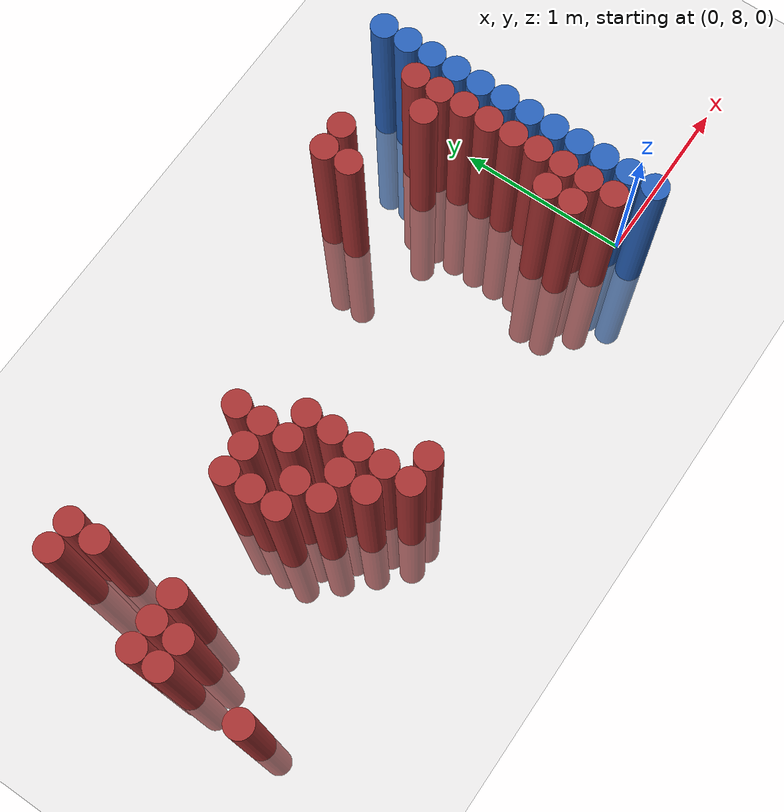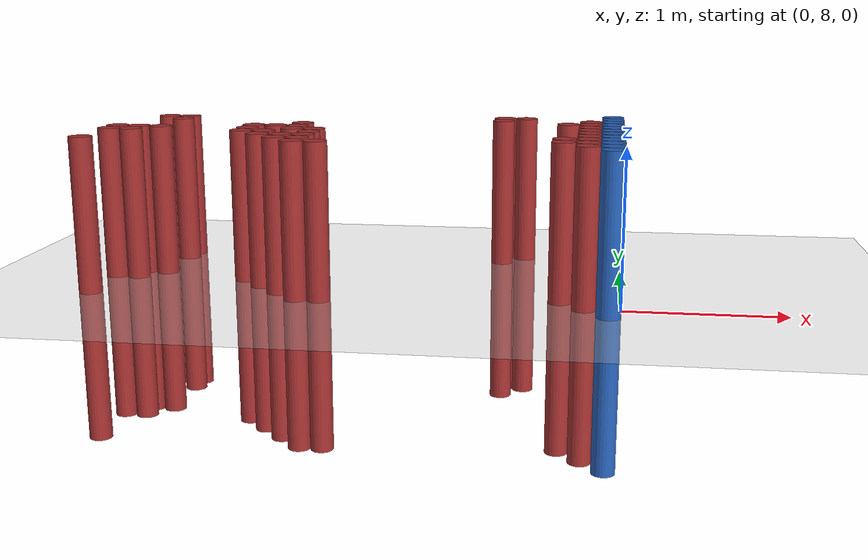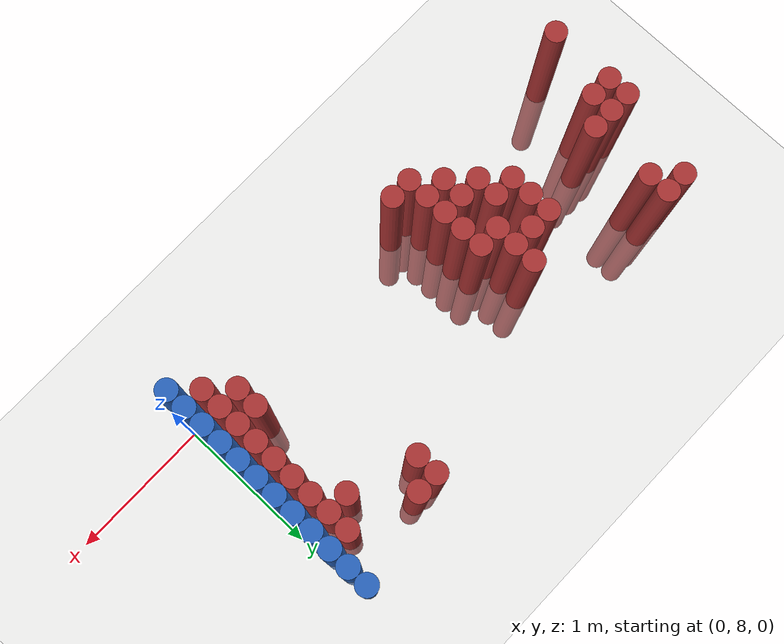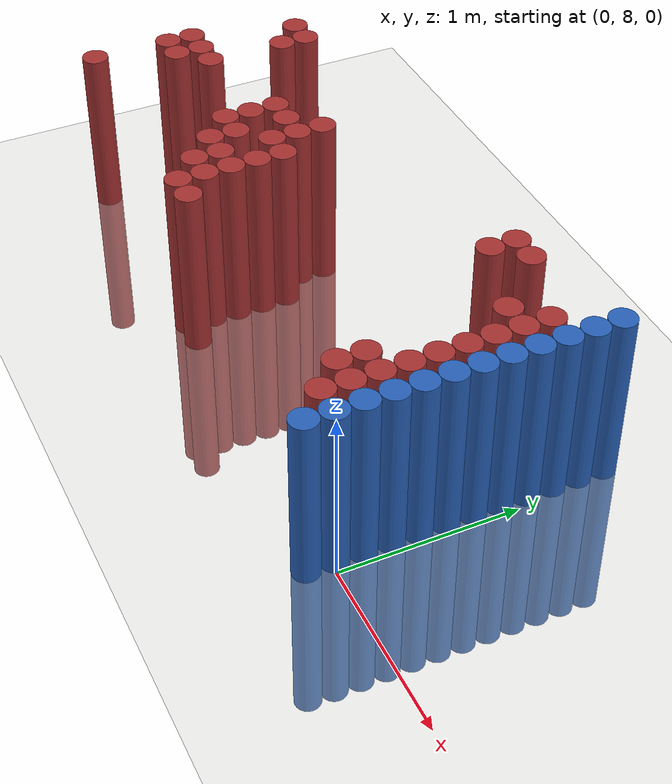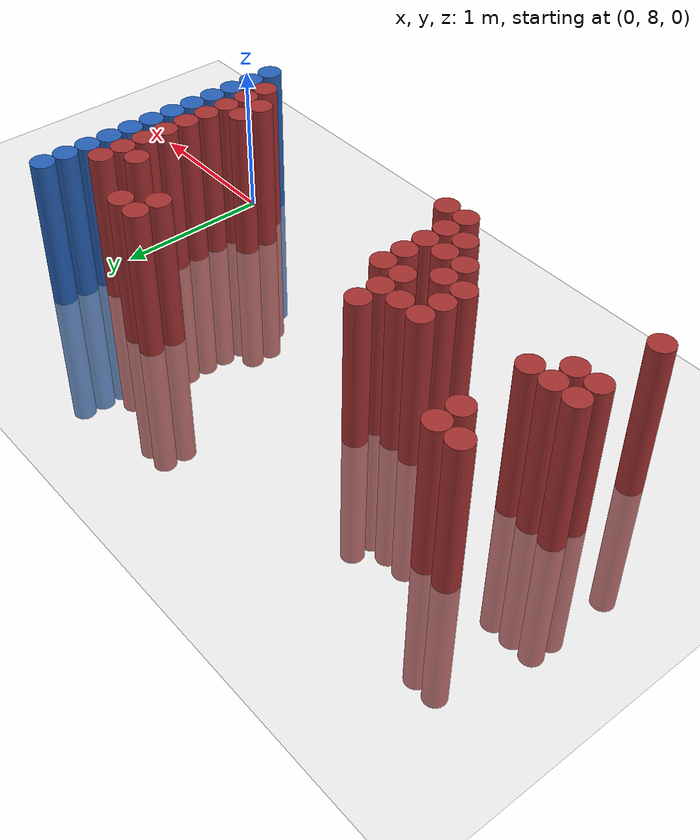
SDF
<sdf version="1.6">
 <world name="default">
  <model name="ground_plane">
   <static>1</static>
   <link name="link">
    <collision name="collision">
     <geometry><plane><normal>0 0 1</normal><size>100 100</size></plane></geometry>
     <surface><friction><ode><mu>100</mu><mu2>50</mu2></ode></friction></surface>
    </collision>
    <visual name="visual">
     <cast_shadows>0</cast_shadows>
     <geometry><plane><normal>0 0 1</normal><size>100 100</size></plane></geometry>
     <material>
      <script><uri>file://media/materials/scripts/gazebo.material</uri><name>Gazebo/Grey</name></script>
     </material>
    </visual>
   </link>
  </model>
  <model name="unit_cylinder_156">
   <static>1</static>
   <pose>-3.375000 8.025000 0.000000 0.000000 0.000000 0.000000</pose>
   <link name="link">
    <inertial>
     <mass>1</mass>
     <inertia><ixx>0.145833</ixx><ixy>0</ixy><ixz>0</ixz><iyy>0.145833</iyy><iyz>0</iyz><izz>0.125</izz></inertia>
    </inertial>
    <collision name="collision">
     <geometry><cylinder><radius>0.075000</radius><length>2</length></cylinder></geometry>
    </collision>
    <visual name="visual">
     <geometry><cylinder><radius>0.075000</radius><length>2</length></cylinder></geometry>
     <material>
      <ambient>0.648000 0.192000 0.192000 1</ambient>
      <diffuse>0.648000 0.192000 0.192000 1</diffuse>
     </material>
     <material>
      <script><name>Gazebo/Grey</name><uri>file://media/materials/scripts/gazebo.material</uri></script>
     </material>
    </visual>
   </link>
  </model>
  <model name="unit_cylinder_157">
   <static>1</static>
   <pose>-3.375000 8.475000 0.000000 0.000000 0.000000 0.000000</pose>
   <link name="link">
    <inertial>
     <mass>1</mass>
     <inertia><ixx>0.145833</ixx><ixy>0</ixy><ixz>0</ixz><iyy>0.145833</iyy><iyz>0</iyz><izz>0.125</izz></inertia>
    </inertial>
    <collision name="collision">
     <geometry><cylinder><radius>0.075000</radius><length>2</length></cylinder></geometry>
    </collision>
    <visual name="visual">
     <geometry><cylinder><radius>0.075000</radius><length>2</length></cylinder></geometry>
     <material>
      <ambient>0.648000 0.192000 0.192000 1</ambient>
      <diffuse>0.648000 0.192000 0.192000 1</diffuse>
     </material>
     <material>
      <script><name>Gazebo/Grey</name><uri>file://media/materials/scripts/gazebo.material</uri></script>
     </material>
    </visual>
   </link>
  </model>
  <model name="unit_cylinder_158">
   <static>1</static>
   <pose>-3.375000 8.625000 0.000000 0.000000 0.000000 0.000000</pose>
   <link name="link">
    <inertial>
     <mass>1</mass>
     <inertia><ixx>0.145833</ixx><ixy>0</ixy><ixz>0</ixz><iyy>0.145833</iyy><iyz>0</iyz><izz>0.125</izz></inertia>
    </inertial>
    <collision name="collision">
     <geometry><cylinder><radius>0.075000</radius><length>2</length></cylinder></geometry>
    </collision>
    <visual name="visual">
     <geometry><cylinder><radius>0.075000</radius><length>2</length></cylinder></geometry>
     <material>
      <ambient>0.648000 0.192000 0.192000 1</ambient>
      <diffuse>0.648000 0.192000 0.192000 1</diffuse>
     </material>
     <material>
      <script><name>Gazebo/Grey</name><uri>file://media/materials/scripts/gazebo.material</uri></script>
     </material>
    </visual>
   </link>
  </model>
  <model name="unit_cylinder_160">
   <static>1</static>
   <pose>-3.225000 8.475000 0.000000 0.000000 0.000000 0.000000</pose>
   <link name="link">
    <inertial>
     <mass>1</mass>
     <inertia><ixx>0.145833</ixx><ixy>0</ixy><ixz>0</ixz><iyy>0.145833</iyy><iyz>0</iyz><izz>0.125</izz></inertia>
    </inertial>
    <collision name="collision">
     <geometry><cylinder><radius>0.075000</radius><length>2</length></cylinder></geometry>
    </collision>
    <visual name="visual">
     <geometry><cylinder><radius>0.075000</radius><length>2</length></cylinder></geometry>
     <material>
      <ambient>0.648000 0.192000 0.192000 1</ambient>
      <diffuse>0.648000 0.192000 0.192000 1</diffuse>
     </material>
     <material>
      <script><name>Gazebo/Grey</name><uri>file://media/materials/scripts/gazebo.material</uri></script>
     </material>
    </visual>
   </link>
  </model>
  <model name="unit_cylinder_161">
   <static>1</static>
   <pose>-3.225000 8.625000 0.000000 0.000000 0.000000 0.000000</pose>
   <link name="link">
    <inertial>
     <mass>1</mass>
     <inertia><ixx>0.145833</ixx><ixy>0</ixy><ixz>0</ixz><iyy>0.145833</iyy><iyz>0</iyz><izz>0.125</izz></inertia>
    </inertial>
    <collision name="collision">
     <geometry><cylinder><radius>0.075000</radius><length>2</length></cylinder></geometry>
    </collision>
    <visual name="visual">
     <geometry><cylinder><radius>0.075000</radius><length>2</length></cylinder></geometry>
     <material>
      <ambient>0.648000 0.192000 0.192000 1</ambient>
      <diffuse>0.648000 0.192000 0.192000 1</diffuse>
     </material>
     <material>
      <script><name>Gazebo/Grey</name><uri>file://media/materials/scripts/gazebo.material</uri></script>
     </material>
    </visual>
   </link>
  </model>
  <model name="unit_cylinder_162">
   <static>1</static>
   <pose>-3.225000 9.225000 0.000000 0.000000 0.000000 0.000000</pose>
   <link name="link">
    <inertial>
     <mass>1</mass>
     <inertia><ixx>0.145833</ixx><ixy>0</ixy><ixz>0</ixz><iyy>0.145833</iyy><iyz>0</iyz><izz>0.125</izz></inertia>
    </inertial>
    <collision name="collision">
     <geometry><cylinder><radius>0.075000</radius><length>2</length></cylinder></geometry>
    </collision>
    <visual name="visual">
     <geometry><cylinder><radius>0.075000</radius><length>2</length></cylinder></geometry>
     <material>
      <ambient>0.648000 0.192000 0.192000 1</ambient>
      <diffuse>0.648000 0.192000 0.192000 1</diffuse>
     </material>
     <material>
      <script><name>Gazebo/Grey</name><uri>file://media/materials/scripts/gazebo.material</uri></script>
     </material>
    </visual>
   </link>
  </model>
  <model name="unit_cylinder_166">
   <static>1</static>
   <pose>-3.075000 8.625000 0.000000 0.000000 0.000000 0.000000</pose>
   <link name="link">
    <inertial>
     <mass>1</mass>
     <inertia><ixx>0.145833</ixx><ixy>0</ixy><ixz>0</ixz><iyy>0.145833</iyy><iyz>0</iyz><izz>0.125</izz></inertia>
    </inertial>
    <collision name="collision">
     <geometry><cylinder><radius>0.075000</radius><length>2</length></cylinder></geometry>
    </collision>
    <visual name="visual">
     <geometry><cylinder><radius>0.075000</radius><length>2</length></cylinder></geometry>
     <material>
      <ambient>0.648000 0.192000 0.192000 1</ambient>
      <diffuse>0.648000 0.192000 0.192000 1</diffuse>
     </material>
     <material>
      <script><name>Gazebo/Grey</name><uri>file://media/materials/scripts/gazebo.material</uri></script>
     </material>
    </visual>
   </link>
  </model>
  <model name="unit_cylinder_167">
   <static>1</static>
   <pose>-3.075000 9.075000 0.000000 0.000000 0.000000 0.000000</pose>
   <link name="link">
    <inertial>
     <mass>1</mass>
     <inertia><ixx>0.145833</ixx><ixy>0</ixy><ixz>0</ixz><iyy>0.145833</iyy><iyz>0</iyz><izz>0.125</izz></inertia>
    </inertial>
    <collision name="collision">
     <geometry><cylinder><radius>0.075000</radius><length>2</length></cylinder></geometry>
    </collision>
    <visual name="visual">
     <geometry><cylinder><radius>0.075000</radius><length>2</length></cylinder></geometry>
     <material>
      <ambient>0.648000 0.192000 0.192000 1</ambient>
      <diffuse>0.648000 0.192000 0.192000 1</diffuse>
     </material>
     <material>
      <script><name>Gazebo/Grey</name><uri>file://media/materials/scripts/gazebo.material</uri></script>
     </material>
    </visual>
   </link>
  </model>
  <model name="unit_cylinder_168">
   <static>1</static>
   <pose>-3.075000 9.225000 0.000000 0.000000 0.000000 0.000000</pose>
   <link name="link">
    <inertial>
     <mass>1</mass>
     <inertia><ixx>0.145833</ixx><ixy>0</ixy><ixz>0</ixz><iyy>0.145833</iyy><iyz>0</iyz><izz>0.125</izz></inertia>
    </inertial>
    <collision name="collision">
     <geometry><cylinder><radius>0.075000</radius><length>2</length></cylinder></geometry>
    </collision>
    <visual name="visual">
     <geometry><cylinder><radius>0.075000</radius><length>2</length></cylinder></geometry>
     <material>
      <ambient>0.648000 0.192000 0.192000 1</ambient>
      <diffuse>0.648000 0.192000 0.192000 1</diffuse>
     </material>
     <material>
      <script><name>Gazebo/Grey</name><uri>file://media/materials/scripts/gazebo.material</uri></script>
     </material>
    </visual>
   </link>
  </model>
  <model name="unit_cylinder_180">
   <static>1</static>
   <pose>-2.475000 8.475000 0.000000 0.000000 0.000000 0.000000</pose>
   <link name="link">
    <inertial>
     <mass>1</mass>
     <inertia><ixx>0.145833</ixx><ixy>0</ixy><ixz>0</ixz><iyy>0.145833</iyy><iyz>0</iyz><izz>0.125</izz></inertia>
    </inertial>
    <collision name="collision">
     <geometry><cylinder><radius>0.075000</radius><length>2</length></cylinder></geometry>
    </collision>
    <visual name="visual">
     <geometry><cylinder><radius>0.075000</radius><length>2</length></cylinder></geometry>
     <material>
      <ambient>0.648000 0.192000 0.192000 1</ambient>
      <diffuse>0.648000 0.192000 0.192000 1</diffuse>
     </material>
     <material>
      <script><name>Gazebo/Grey</name><uri>file://media/materials/scripts/gazebo.material</uri></script>
     </material>
    </visual>
   </link>
  </model>
  <model name="unit_cylinder_181">
   <static>1</static>
   <pose>-2.475000 8.625000 0.000000 0.000000 0.000000 0.000000</pose>
   <link name="link">
    <inertial>
     <mass>1</mass>
     <inertia><ixx>0.145833</ixx><ixy>0</ixy><ixz>0</ixz><iyy>0.145833</iyy><iyz>0</iyz><izz>0.125</izz></inertia>
    </inertial>
    <collision name="collision">
     <geometry><cylinder><radius>0.075000</radius><length>2</length></cylinder></geometry>
    </collision>
    <visual name="visual">
     <geometry><cylinder><radius>0.075000</radius><length>2</length></cylinder></geometry>
     <material>
      <ambient>0.648000 0.192000 0.192000 1</ambient>
      <diffuse>0.648000 0.192000 0.192000 1</diffuse>
     </material>
     <material>
      <script><name>Gazebo/Grey</name><uri>file://media/materials/scripts/gazebo.material</uri></script>
     </material>
    </visual>
   </link>
  </model>
  <model name="unit_cylinder_182">
   <static>1</static>
   <pose>-2.475000 8.775000 0.000000 0.000000 0.000000 0.000000</pose>
   <link name="link">
    <inertial>
     <mass>1</mass>
     <inertia><ixx>0.145833</ixx><ixy>0</ixy><ixz>0</ixz><iyy>0.145833</iyy><iyz>0</iyz><izz>0.125</izz></inertia>
    </inertial>
    <collision name="collision">
     <geometry><cylinder><radius>0.075000</radius><length>2</length></cylinder></geometry>
    </collision>
    <visual name="visual">
     <geometry><cylinder><radius>0.075000</radius><length>2</length></cylinder></geometry>
     <material>
      <ambient>0.648000 0.192000 0.192000 1</ambient>
      <diffuse>0.648000 0.192000 0.192000 1</diffuse>
     </material>
     <material>
      <script><name>Gazebo/Grey</name><uri>file://media/materials/scripts/gazebo.material</uri></script>
     </material>
    </visual>
   </link>
  </model>
  <model name="unit_cylinder_183">
   <static>1</static>
   <pose>-2.325000 8.325000 0.000000 0.000000 0.000000 0.000000</pose>
   <link name="link">
    <inertial>
     <mass>1</mass>
     <inertia><ixx>0.145833</ixx><ixy>0</ixy><ixz>0</ixz><iyy>0.145833</iyy><iyz>0</iyz><izz>0.125</izz></inertia>
    </inertial>
    <collision name="collision">
     <geometry><cylinder><radius>0.075000</radius><length>2</length></cylinder></geometry>
    </collision>
    <visual name="visual">
     <geometry><cylinder><radius>0.075000</radius><length>2</length></cylinder></geometry>
     <material>
      <ambient>0.648000 0.192000 0.192000 1</ambient>
      <diffuse>0.648000 0.192000 0.192000 1</diffuse>
     </material>
     <material>
      <script><name>Gazebo/Grey</name><uri>file://media/materials/scripts/gazebo.material</uri></script>
     </material>
    </visual>
   </link>
  </model>
  <model name="unit_cylinder_184">
   <static>1</static>
   <pose>-2.325000 8.475000 0.000000 0.000000 0.000000 0.000000</pose>
   <link name="link">
    <inertial>
     <mass>1</mass>
     <inertia><ixx>0.145833</ixx><ixy>0</ixy><ixz>0</ixz><iyy>0.145833</iyy><iyz>0</iyz><izz>0.125</izz></inertia>
    </inertial>
    <collision name="collision">
     <geometry><cylinder><radius>0.075000</radius><length>2</length></cylinder></geometry>
    </collision>
    <visual name="visual">
     <geometry><cylinder><radius>0.075000</radius><length>2</length></cylinder></geometry>
     <material>
      <ambient>0.648000 0.192000 0.192000 1</ambient>
      <diffuse>0.648000 0.192000 0.192000 1</diffuse>
     </material>
     <material>
      <script><name>Gazebo/Grey</name><uri>file://media/materials/scripts/gazebo.material</uri></script>
     </material>
    </visual>
   </link>
  </model>
  <model name="unit_cylinder_185">
   <static>1</static>
   <pose>-2.325000 8.775000 0.000000 0.000000 0.000000 0.000000</pose>
   <link name="link">
    <inertial>
     <mass>1</mass>
     <inertia><ixx>0.145833</ixx><ixy>0</ixy><ixz>0</ixz><iyy>0.145833</iyy><iyz>0</iyz><izz>0.125</izz></inertia>
    </inertial>
    <collision name="collision">
     <geometry><cylinder><radius>0.075000</radius><length>2</length></cylinder></geometry>
    </collision>
    <visual name="visual">
     <geometry><cylinder><radius>0.075000</radius><length>2</length></cylinder></geometry>
     <material>
      <ambient>0.648000 0.192000 0.192000 1</ambient>
      <diffuse>0.648000 0.192000 0.192000 1</diffuse>
     </material>
     <material>
      <script><name>Gazebo/Grey</name><uri>file://media/materials/scripts/gazebo.material</uri></script>
     </material>
    </visual>
   </link>
  </model>
  <model name="unit_cylinder_187">
   <static>1</static>
   <pose>-2.175000 8.175000 0.000000 0.000000 0.000000 0.000000</pose>
   <link name="link">
    <inertial>
     <mass>1</mass>
     <inertia><ixx>0.145833</ixx><ixy>0</ixy><ixz>0</ixz><iyy>0.145833</iyy><iyz>0</iyz><izz>0.125</izz></inertia>
    </inertial>
    <collision name="collision">
     <geometry><cylinder><radius>0.075000</radius><length>2</length></cylinder></geometry>
    </collision>
    <visual name="visual">
     <geometry><cylinder><radius>0.075000</radius><length>2</length></cylinder></geometry>
     <material>
      <ambient>0.648000 0.192000 0.192000 1</ambient>
      <diffuse>0.648000 0.192000 0.192000 1</diffuse>
     </material>
     <material>
      <script><name>Gazebo/Grey</name><uri>file://media/materials/scripts/gazebo.material</uri></script>
     </material>
    </visual>
   </link>
  </model>
  <model name="unit_cylinder_188">
   <static>1</static>
   <pose>-2.175000 8.325000 0.000000 0.000000 0.000000 0.000000</pose>
   <link name="link">
    <inertial>
     <mass>1</mass>
     <inertia><ixx>0.145833</ixx><ixy>0</ixy><ixz>0</ixz><iyy>0.145833</iyy><iyz>0</iyz><izz>0.125</izz></inertia>
    </inertial>
    <collision name="collision">
     <geometry><cylinder><radius>0.075000</radius><length>2</length></cylinder></geometry>
    </collision>
    <visual name="visual">
     <geometry><cylinder><radius>0.075000</radius><length>2</length></cylinder></geometry>
     <material>
      <ambient>0.648000 0.192000 0.192000 1</ambient>
      <diffuse>0.648000 0.192000 0.192000 1</diffuse>
     </material>
     <material>
      <script><name>Gazebo/Grey</name><uri>file://media/materials/scripts/gazebo.material</uri></script>
     </material>
    </visual>
   </link>
  </model>
  <model name="unit_cylinder_189">
   <static>1</static>
   <pose>-2.175000 8.625000 0.000000 0.000000 0.000000 0.000000</pose>
   <link name="link">
    <inertial>
     <mass>1</mass>
     <inertia><ixx>0.145833</ixx><ixy>0</ixy><ixz>0</ixz><iyy>0.145833</iyy><iyz>0</iyz><izz>0.125</izz></inertia>
    </inertial>
    <collision name="collision">
     <geometry><cylinder><radius>0.075000</radius><length>2</length></cylinder></geometry>
    </collision>
    <visual name="visual">
     <geometry><cylinder><radius>0.075000</radius><length>2</length></cylinder></geometry>
     <material>
      <ambient>0.648000 0.192000 0.192000 1</ambient>
      <diffuse>0.648000 0.192000 0.192000 1</diffuse>
     </material>
     <material>
      <script><name>Gazebo/Grey</name><uri>file://media/materials/scripts/gazebo.material</uri></script>
     </material>
    </visual>
   </link>
  </model>
  <model name="unit_cylinder_190">
   <static>1</static>
   <pose>-2.175000 8.775000 0.000000 0.000000 0.000000 0.000000</pose>
   <link name="link">
    <inertial>
     <mass>1</mass>
     <inertia><ixx>0.145833</ixx><ixy>0</ixy><ixz>0</ixz><iyy>0.145833</iyy><iyz>0</iyz><izz>0.125</izz></inertia>
    </inertial>
    <collision name="collision">
     <geometry><cylinder><radius>0.075000</radius><length>2</length></cylinder></geometry>
    </collision>
    <visual name="visual">
     <geometry><cylinder><radius>0.075000</radius><length>2</length></cylinder></geometry>
     <material>
      <ambient>0.648000 0.192000 0.192000 1</ambient>
      <diffuse>0.648000 0.192000 0.192000 1</diffuse>
     </material>
     <material>
      <script><name>Gazebo/Grey</name><uri>file://media/materials/scripts/gazebo.material</uri></script>
     </material>
    </visual>
   </link>
  </model>
  <model name="unit_cylinder_191">
   <static>1</static>
   <pose>-2.175000 8.925000 0.000000 0.000000 0.000000 0.000000</pose>
   <link name="link">
    <inertial>
     <mass>1</mass>
     <inertia><ixx>0.145833</ixx><ixy>0</ixy><ixz>0</ixz><iyy>0.145833</iyy><iyz>0</iyz><izz>0.125</izz></inertia>
    </inertial>
    <collision name="collision">
     <geometry><cylinder><radius>0.075000</radius><length>2</length></cylinder></geometry>
    </collision>
    <visual name="visual">
     <geometry><cylinder><radius>0.075000</radius><length>2</length></cylinder></geometry>
     <material>
      <ambient>0.648000 0.192000 0.192000 1</ambient>
      <diffuse>0.648000 0.192000 0.192000 1</diffuse>
     </material>
     <material>
      <script><name>Gazebo/Grey</name><uri>file://media/materials/scripts/gazebo.material</uri></script>
     </material>
    </visual>
   </link>
  </model>
  <model name="unit_cylinder_196">
   <static>1</static>
   <pose>-2.025000 8.025000 0.000000 0.000000 0.000000 0.000000</pose>
   <link name="link">
    <inertial>
     <mass>1</mass>
     <inertia><ixx>0.145833</ixx><ixy>0</ixy><ixz>0</ixz><iyy>0.145833</iyy><iyz>0</iyz><izz>0.125</izz></inertia>
    </inertial>
    <collision name="collision">
     <geometry><cylinder><radius>0.075000</radius><length>2</length></cylinder></geometry>
    </collision>
    <visual name="visual">
     <geometry><cylinder><radius>0.075000</radius><length>2</length></cylinder></geometry>
     <material>
      <ambient>0.648000 0.192000 0.192000 1</ambient>
      <diffuse>0.648000 0.192000 0.192000 1</diffuse>
     </material>
     <material>
      <script><name>Gazebo/Grey</name><uri>file://media/materials/scripts/gazebo.material</uri></script>
     </material>
    </visual>
   </link>
  </model>
  <model name="unit_cylinder_197">
   <static>1</static>
   <pose>-2.025000 8.175000 0.000000 0.000000 0.000000 0.000000</pose>
   <link name="link">
    <inertial>
     <mass>1</mass>
     <inertia><ixx>0.145833</ixx><ixy>0</ixy><ixz>0</ixz><iyy>0.145833</iyy><iyz>0</iyz><izz>0.125</izz></inertia>
    </inertial>
    <collision name="collision">
     <geometry><cylinder><radius>0.075000</radius><length>2</length></cylinder></geometry>
    </collision>
    <visual name="visual">
     <geometry><cylinder><radius>0.075000</radius><length>2</length></cylinder></geometry>
     <material>
      <ambient>0.648000 0.192000 0.192000 1</ambient>
      <diffuse>0.648000 0.192000 0.192000 1</diffuse>
     </material>
     <material>
      <script><name>Gazebo/Grey</name><uri>file://media/materials/scripts/gazebo.material</uri></script>
     </material>
    </visual>
   </link>
  </model>
  <model name="unit_cylinder_198">
   <static>1</static>
   <pose>-2.025000 8.325000 0.000000 0.000000 0.000000 0.000000</pose>
   <link name="link">
    <inertial>
     <mass>1</mass>
     <inertia><ixx>0.145833</ixx><ixy>0</ixy><ixz>0</ixz><iyy>0.145833</iyy><iyz>0</iyz><izz>0.125</izz></inertia>
    </inertial>
    <collision name="collision">
     <geometry><cylinder><radius>0.075000</radius><length>2</length></cylinder></geometry>
    </collision>
    <visual name="visual">
     <geometry><cylinder><radius>0.075000</radius><length>2</length></cylinder></geometry>
     <material>
      <ambient>0.648000 0.192000 0.192000 1</ambient>
      <diffuse>0.648000 0.192000 0.192000 1</diffuse>
     </material>
     <material>
      <script><name>Gazebo/Grey</name><uri>file://media/materials/scripts/gazebo.material</uri></script>
     </material>
    </visual>
   </link>
  </model>
  <model name="unit_cylinder_199">
   <static>1</static>
   <pose>-2.025000 8.475000 0.000000 0.000000 0.000000 0.000000</pose>
   <link name="link">
    <inertial>
     <mass>1</mass>
     <inertia><ixx>0.145833</ixx><ixy>0</ixy><ixz>0</ixz><iyy>0.145833</iyy><iyz>0</iyz><izz>0.125</izz></inertia>
    </inertial>
    <collision name="collision">
     <geometry><cylinder><radius>0.075000</radius><length>2</length></cylinder></geometry>
    </collision>
    <visual name="visual">
     <geometry><cylinder><radius>0.075000</radius><length>2</length></cylinder></geometry>
     <material>
      <ambient>0.648000 0.192000 0.192000 1</ambient>
      <diffuse>0.648000 0.192000 0.192000 1</diffuse>
     </material>
     <material>
      <script><name>Gazebo/Grey</name><uri>file://media/materials/scripts/gazebo.material</uri></script>
     </material>
    </visual>
   </link>
  </model>
  <model name="unit_cylinder_200">
   <static>1</static>
   <pose>-2.025000 8.625000 0.000000 0.000000 0.000000 0.000000</pose>
   <link name="link">
    <inertial>
     <mass>1</mass>
     <inertia><ixx>0.145833</ixx><ixy>0</ixy><ixz>0</ixz><iyy>0.145833</iyy><iyz>0</iyz><izz>0.125</izz></inertia>
    </inertial>
    <collision name="collision">
     <geometry><cylinder><radius>0.075000</radius><length>2</length></cylinder></geometry>
    </collision>
    <visual name="visual">
     <geometry><cylinder><radius>0.075000</radius><length>2</length></cylinder></geometry>
     <material>
      <ambient>0.648000 0.192000 0.192000 1</ambient>
      <diffuse>0.648000 0.192000 0.192000 1</diffuse>
     </material>
     <material>
      <script><name>Gazebo/Grey</name><uri>file://media/materials/scripts/gazebo.material</uri></script>
     </material>
    </visual>
   </link>
  </model>
  <model name="unit_cylinder_202">
   <static>1</static>
   <pose>-1.875000 8.025000 0.000000 0.000000 0.000000 0.000000</pose>
   <link name="link">
    <inertial>
     <mass>1</mass>
     <inertia><ixx>0.145833</ixx><ixy>0</ixy><ixz>0</ixz><iyy>0.145833</iyy><iyz>0</iyz><izz>0.125</izz></inertia>
    </inertial>
    <collision name="collision">
     <geometry><cylinder><radius>0.075000</radius><length>2</length></cylinder></geometry>
    </collision>
    <visual name="visual">
     <geometry><cylinder><radius>0.075000</radius><length>2</length></cylinder></geometry>
     <material>
      <ambient>0.648000 0.192000 0.192000 1</ambient>
      <diffuse>0.648000 0.192000 0.192000 1</diffuse>
     </material>
     <material>
      <script><name>Gazebo/Grey</name><uri>file://media/materials/scripts/gazebo.material</uri></script>
     </material>
    </visual>
   </link>
  </model>
  <model name="unit_cylinder_206">
   <static>1</static>
   <pose>-0.825000 9.225000 0.000000 0.000000 0.000000 0.000000</pose>
   <link name="link">
    <inertial>
     <mass>1</mass>
     <inertia><ixx>0.145833</ixx><ixy>0</ixy><ixz>0</ixz><iyy>0.145833</iyy><iyz>0</iyz><izz>0.125</izz></inertia>
    </inertial>
    <collision name="collision">
     <geometry><cylinder><radius>0.075000</radius><length>2</length></cylinder></geometry>
    </collision>
    <visual name="visual">
     <geometry><cylinder><radius>0.075000</radius><length>2</length></cylinder></geometry>
     <material>
      <ambient>0.648000 0.192000 0.192000 1</ambient>
      <diffuse>0.648000 0.192000 0.192000 1</diffuse>
     </material>
     <material>
      <script><name>Gazebo/Grey</name><uri>file://media/materials/scripts/gazebo.material</uri></script>
     </material>
    </visual>
   </link>
  </model>
  <model name="unit_cylinder_207">
   <static>1</static>
   <pose>-0.825000 9.375000 0.000000 0.000000 0.000000 0.000000</pose>
   <link name="link">
    <inertial>
     <mass>1</mass>
     <inertia><ixx>0.145833</ixx><ixy>0</ixy><ixz>0</ixz><iyy>0.145833</iyy><iyz>0</iyz><izz>0.125</izz></inertia>
    </inertial>
    <collision name="collision">
     <geometry><cylinder><radius>0.075000</radius><length>2</length></cylinder></geometry>
    </collision>
    <visual name="visual">
     <geometry><cylinder><radius>0.075000</radius><length>2</length></cylinder></geometry>
     <material>
      <ambient>0.648000 0.192000 0.192000 1</ambient>
      <diffuse>0.648000 0.192000 0.192000 1</diffuse>
     </material>
     <material>
      <script><name>Gazebo/Grey</name><uri>file://media/materials/scripts/gazebo.material</uri></script>
     </material>
    </visual>
   </link>
  </model>
  <model name="unit_cylinder_210">
   <static>1</static>
   <pose>-0.675000 9.375000 0.000000 0.000000 0.000000 0.000000</pose>
   <link name="link">
    <inertial>
     <mass>1</mass>
     <inertia><ixx>0.145833</ixx><ixy>0</ixy><ixz>0</ixz><iyy>0.145833</iyy><iyz>0</iyz><izz>0.125</izz></inertia>
    </inertial>
    <collision name="collision">
     <geometry><cylinder><radius>0.075000</radius><length>2</length></cylinder></geometry>
    </collision>
    <visual name="visual">
     <geometry><cylinder><radius>0.075000</radius><length>2</length></cylinder></geometry>
     <material>
      <ambient>0.648000 0.192000 0.192000 1</ambient>
      <diffuse>0.648000 0.192000 0.192000 1</diffuse>
     </material>
     <material>
      <script><name>Gazebo/Grey</name><uri>file://media/materials/scripts/gazebo.material</uri></script>
     </material>
    </visual>
   </link>
  </model>
  <model name="unit_cylinder_215">
   <static>1</static>
   <pose>-0.375000 8.175000 0.000000 0.000000 0.000000 0.000000</pose>
   <link name="link">
    <inertial>
     <mass>1</mass>
     <inertia><ixx>0.145833</ixx><ixy>0</ixy><ixz>0</ixz><iyy>0.145833</iyy><iyz>0</iyz><izz>0.125</izz></inertia>
    </inertial>
    <collision name="collision">
     <geometry><cylinder><radius>0.075000</radius><length>2</length></cylinder></geometry>
    </collision>
    <visual name="visual">
     <geometry><cylinder><radius>0.075000</radius><length>2</length></cylinder></geometry>
     <material>
      <ambient>0.648000 0.192000 0.192000 1</ambient>
      <diffuse>0.648000 0.192000 0.192000 1</diffuse>
     </material>
     <material>
      <script><name>Gazebo/Grey</name><uri>file://media/materials/scripts/gazebo.material</uri></script>
     </material>
    </visual>
   </link>
  </model>
  <model name="unit_cylinder_216">
   <static>1</static>
   <pose>-0.375000 8.325000 0.000000 0.000000 0.000000 0.000000</pose>
   <link name="link">
    <inertial>
     <mass>1</mass>
     <inertia><ixx>0.145833</ixx><ixy>0</ixy><ixz>0</ixz><iyy>0.145833</iyy><iyz>0</iyz><izz>0.125</izz></inertia>
    </inertial>
    <collision name="collision">
     <geometry><cylinder><radius>0.075000</radius><length>2</length></cylinder></geometry>
    </collision>
    <visual name="visual">
     <geometry><cylinder><radius>0.075000</radius><length>2</length></cylinder></geometry>
     <material>
      <ambient>0.648000 0.192000 0.192000 1</ambient>
      <diffuse>0.648000 0.192000 0.192000 1</diffuse>
     </material>
     <material>
      <script><name>Gazebo/Grey</name><uri>file://media/materials/scripts/gazebo.material</uri></script>
     </material>
    </visual>
   </link>
  </model>
  <model name="unit_cylinder_217">
   <static>1</static>
   <pose>-0.375000 9.075000 0.000000 0.000000 0.000000 0.000000</pose>
   <link name="link">
    <inertial>
     <mass>1</mass>
     <inertia><ixx>0.145833</ixx><ixy>0</ixy><ixz>0</ixz><iyy>0.145833</iyy><iyz>0</iyz><izz>0.125</izz></inertia>
    </inertial>
    <collision name="collision">
     <geometry><cylinder><radius>0.075000</radius><length>2</length></cylinder></geometry>
    </collision>
    <visual name="visual">
     <geometry><cylinder><radius>0.075000</radius><length>2</length></cylinder></geometry>
     <material>
      <ambient>0.648000 0.192000 0.192000 1</ambient>
      <diffuse>0.648000 0.192000 0.192000 1</diffuse>
     </material>
     <material>
      <script><name>Gazebo/Grey</name><uri>file://media/materials/scripts/gazebo.material</uri></script>
     </material>
    </visual>
   </link>
  </model>
  <model name="unit_cylinder_225">
   <static>1</static>
   <pose>-0.225000 8.025000 0.000000 0.000000 0.000000 0.000000</pose>
   <link name="link">
    <inertial>
     <mass>1</mass>
     <inertia><ixx>0.145833</ixx><ixy>0</ixy><ixz>0</ixz><iyy>0.145833</iyy><iyz>0</iyz><izz>0.125</izz></inertia>
    </inertial>
    <collision name="collision">
     <geometry><cylinder><radius>0.075000</radius><length>2</length></cylinder></geometry>
    </collision>
    <visual name="visual">
     <geometry><cylinder><radius>0.075000</radius><length>2</length></cylinder></geometry>
     <material>
      <ambient>0.648000 0.192000 0.192000 1</ambient>
      <diffuse>0.648000 0.192000 0.192000 1</diffuse>
     </material>
     <material>
      <script><name>Gazebo/Grey</name><uri>file://media/materials/scripts/gazebo.material</uri></script>
     </material>
    </visual>
   </link>
  </model>
  <model name="unit_cylinder_226">
   <static>1</static>
   <pose>-0.225000 8.175000 0.000000 0.000000 0.000000 0.000000</pose>
   <link name="link">
    <inertial>
     <mass>1</mass>
     <inertia><ixx>0.145833</ixx><ixy>0</ixy><ixz>0</ixz><iyy>0.145833</iyy><iyz>0</iyz><izz>0.125</izz></inertia>
    </inertial>
    <collision name="collision">
     <geometry><cylinder><radius>0.075000</radius><length>2</length></cylinder></geometry>
    </collision>
    <visual name="visual">
     <geometry><cylinder><radius>0.075000</radius><length>2</length></cylinder></geometry>
     <material>
      <ambient>0.648000 0.192000 0.192000 1</ambient>
      <diffuse>0.648000 0.192000 0.192000 1</diffuse>
     </material>
     <material>
      <script><name>Gazebo/Grey</name><uri>file://media/materials/scripts/gazebo.material</uri></script>
     </material>
    </visual>
   </link>
  </model>
  <model name="unit_cylinder_227">
   <static>1</static>
   <pose>-0.225000 8.325000 0.000000 0.000000 0.000000 0.000000</pose>
   <link name="link">
    <inertial>
     <mass>1</mass>
     <inertia><ixx>0.145833</ixx><ixy>0</ixy><ixz>0</ixz><iyy>0.145833</iyy><iyz>0</iyz><izz>0.125</izz></inertia>
    </inertial>
    <collision name="collision">
     <geometry><cylinder><radius>0.075000</radius><length>2</length></cylinder></geometry>
    </collision>
    <visual name="visual">
     <geometry><cylinder><radius>0.075000</radius><length>2</length></cylinder></geometry>
     <material>
      <ambient>0.648000 0.192000 0.192000 1</ambient>
      <diffuse>0.648000 0.192000 0.192000 1</diffuse>
     </material>
     <material>
      <script><name>Gazebo/Grey</name><uri>file://media/materials/scripts/gazebo.material</uri></script>
     </material>
    </visual>
   </link>
  </model>
  <model name="unit_cylinder_228">
   <static>1</static>
   <pose>-0.225000 8.475000 0.000000 0.000000 0.000000 0.000000</pose>
   <link name="link">
    <inertial>
     <mass>1</mass>
     <inertia><ixx>0.145833</ixx><ixy>0</ixy><ixz>0</ixz><iyy>0.145833</iyy><iyz>0</iyz><izz>0.125</izz></inertia>
    </inertial>
    <collision name="collision">
     <geometry><cylinder><radius>0.075000</radius><length>2</length></cylinder></geometry>
    </collision>
    <visual name="visual">
     <geometry><cylinder><radius>0.075000</radius><length>2</length></cylinder></geometry>
     <material>
      <ambient>0.648000 0.192000 0.192000 1</ambient>
      <diffuse>0.648000 0.192000 0.192000 1</diffuse>
     </material>
     <material>
      <script><name>Gazebo/Grey</name><uri>file://media/materials/scripts/gazebo.material</uri></script>
     </material>
    </visual>
   </link>
  </model>
  <model name="unit_cylinder_229">
   <static>1</static>
   <pose>-0.225000 8.625000 0.000000 0.000000 0.000000 0.000000</pose>
   <link name="link">
    <inertial>
     <mass>1</mass>
     <inertia><ixx>0.145833</ixx><ixy>0</ixy><ixz>0</ixz><iyy>0.145833</iyy><iyz>0</iyz><izz>0.125</izz></inertia>
    </inertial>
    <collision name="collision">
     <geometry><cylinder><radius>0.075000</radius><length>2</length></cylinder></geometry>
    </collision>
    <visual name="visual">
     <geometry><cylinder><radius>0.075000</radius><length>2</length></cylinder></geometry>
     <material>
      <ambient>0.648000 0.192000 0.192000 1</ambient>
      <diffuse>0.648000 0.192000 0.192000 1</diffuse>
     </material>
     <material>
      <script><name>Gazebo/Grey</name><uri>file://media/materials/scripts/gazebo.material</uri></script>
     </material>
    </visual>
   </link>
  </model>
  <model name="unit_cylinder_230">
   <static>1</static>
   <pose>-0.225000 8.775000 0.000000 0.000000 0.000000 0.000000</pose>
   <link name="link">
    <inertial>
     <mass>1</mass>
     <inertia><ixx>0.145833</ixx><ixy>0</ixy><ixz>0</ixz><iyy>0.145833</iyy><iyz>0</iyz><izz>0.125</izz></inertia>
    </inertial>
    <collision name="collision">
     <geometry><cylinder><radius>0.075000</radius><length>2</length></cylinder></geometry>
    </collision>
    <visual name="visual">
     <geometry><cylinder><radius>0.075000</radius><length>2</length></cylinder></geometry>
     <material>
      <ambient>0.648000 0.192000 0.192000 1</ambient>
      <diffuse>0.648000 0.192000 0.192000 1</diffuse>
     </material>
     <material>
      <script><name>Gazebo/Grey</name><uri>file://media/materials/scripts/gazebo.material</uri></script>
     </material>
    </visual>
   </link>
  </model>
  <model name="unit_cylinder_231">
   <static>1</static>
   <pose>-0.225000 8.925000 0.000000 0.000000 0.000000 0.000000</pose>
   <link name="link">
    <inertial>
     <mass>1</mass>
     <inertia><ixx>0.145833</ixx><ixy>0</ixy><ixz>0</ixz><iyy>0.145833</iyy><iyz>0</iyz><izz>0.125</izz></inertia>
    </inertial>
    <collision name="collision">
     <geometry><cylinder><radius>0.075000</radius><length>2</length></cylinder></geometry>
    </collision>
    <visual name="visual">
     <geometry><cylinder><radius>0.075000</radius><length>2</length></cylinder></geometry>
     <material>
      <ambient>0.648000 0.192000 0.192000 1</ambient>
      <diffuse>0.648000 0.192000 0.192000 1</diffuse>
     </material>
     <material>
      <script><name>Gazebo/Grey</name><uri>file://media/materials/scripts/gazebo.material</uri></script>
     </material>
    </visual>
   </link>
  </model>
  <model name="unit_cylinder_232">
   <static>1</static>
   <pose>-0.225000 9.075000 0.000000 0.000000 0.000000 0.000000</pose>
   <link name="link">
    <inertial>
     <mass>1</mass>
     <inertia><ixx>0.145833</ixx><ixy>0</ixy><ixz>0</ixz><iyy>0.145833</iyy><iyz>0</iyz><izz>0.125</izz></inertia>
    </inertial>
    <collision name="collision">
     <geometry><cylinder><radius>0.075000</radius><length>2</length></cylinder></geometry>
    </collision>
    <visual name="visual">
     <geometry><cylinder><radius>0.075000</radius><length>2</length></cylinder></geometry>
     <material>
      <ambient>0.648000 0.192000 0.192000 1</ambient>
      <diffuse>0.648000 0.192000 0.192000 1</diffuse>
     </material>
     <material>
      <script><name>Gazebo/Grey</name><uri>file://media/materials/scripts/gazebo.material</uri></script>
     </material>
    </visual>
   </link>
  </model>
  <model name="unit_cylinder_233">
   <static>1</static>
   <pose>-0.225000 9.225000 0.000000 0.000000 0.000000 0.000000</pose>
   <link name="link">
    <inertial>
     <mass>1</mass>
     <inertia><ixx>0.145833</ixx><ixy>0</ixy><ixz>0</ixz><iyy>0.145833</iyy><iyz>0</iyz><izz>0.125</izz></inertia>
    </inertial>
    <collision name="collision">
     <geometry><cylinder><radius>0.075000</radius><length>2</length></cylinder></geometry>
    </collision>
    <visual name="visual">
     <geometry><cylinder><radius>0.075000</radius><length>2</length></cylinder></geometry>
     <material>
      <ambient>0.648000 0.192000 0.192000 1</ambient>
      <diffuse>0.648000 0.192000 0.192000 1</diffuse>
     </material>
     <material>
      <script><name>Gazebo/Grey</name><uri>file://media/materials/scripts/gazebo.material</uri></script>
     </material>
    </visual>
   </link>
  </model>
  <model name="unit_cylinder_252">
   <static>1</static>
   <pose>-0.075000 7.875000 0.000000 0.000000 0.000000 0.000000</pose>
   <link name="link">
    <inertial>
     <mass>1</mass>
     <inertia><ixx>0.145833</ixx><ixy>0</ixy><ixz>0</ixz><iyy>0.145833</iyy><iyz>0</iyz><izz>0.125</izz></inertia>
    </inertial>
    <collision name="collision">
     <geometry><cylinder><radius>0.075000</radius><length>2</length></cylinder></geometry>
    </collision>
    <visual name="visual">
     <geometry><cylinder><radius>0.075000</radius><length>2</length></cylinder></geometry>
     <material>
      <ambient>0.152000 0.379000 0.720000 1</ambient>
      <diffuse>0.152000 0.379000 0.720000 1</diffuse>
     </material>
     <material>
      <script><name>Gazebo/Grey</name><uri>file://media/materials/scripts/gazebo.material</uri></script>
     </material>
    </visual>
   </link>
  </model>
  <model name="unit_cylinder_253">
   <static>1</static>
   <pose>-0.075000 8.025000 0.000000 0.000000 0.000000 0.000000</pose>
   <link name="link">
    <inertial>
     <mass>1</mass>
     <inertia><ixx>0.145833</ixx><ixy>0</ixy><ixz>0</ixz><iyy>0.145833</iyy><iyz>0</iyz><izz>0.125</izz></inertia>
    </inertial>
    <collision name="collision">
     <geometry><cylinder><radius>0.075000</radius><length>2</length></cylinder></geometry>
    </collision>
    <visual name="visual">
     <geometry><cylinder><radius>0.075000</radius><length>2</length></cylinder></geometry>
     <material>
      <ambient>0.152000 0.379000 0.720000 1</ambient>
      <diffuse>0.152000 0.379000 0.720000 1</diffuse>
     </material>
     <material>
      <script><name>Gazebo/Grey</name><uri>file://media/materials/scripts/gazebo.material</uri></script>
     </material>
    </visual>
   </link>
  </model>
  <model name="unit_cylinder_254">
   <static>1</static>
   <pose>-0.075000 8.175000 0.000000 0.000000 0.000000 0.000000</pose>
   <link name="link">
    <inertial>
     <mass>1</mass>
     <inertia><ixx>0.145833</ixx><ixy>0</ixy><ixz>0</ixz><iyy>0.145833</iyy><iyz>0</iyz><izz>0.125</izz></inertia>
    </inertial>
    <collision name="collision">
     <geometry><cylinder><radius>0.075000</radius><length>2</length></cylinder></geometry>
    </collision>
    <visual name="visual">
     <geometry><cylinder><radius>0.075000</radius><length>2</length></cylinder></geometry>
     <material>
      <ambient>0.152000 0.379000 0.720000 1</ambient>
      <diffuse>0.152000 0.379000 0.720000 1</diffuse>
     </material>
     <material>
      <script><name>Gazebo/Grey</name><uri>file://media/materials/scripts/gazebo.material</uri></script>
     </material>
    </visual>
   </link>
  </model>
  <model name="unit_cylinder_255">
   <static>1</static>
   <pose>-0.075000 8.325000 0.000000 0.000000 0.000000 0.000000</pose>
   <link name="link">
    <inertial>
     <mass>1</mass>
     <inertia><ixx>0.145833</ixx><ixy>0</ixy><ixz>0</ixz><iyy>0.145833</iyy><iyz>0</iyz><izz>0.125</izz></inertia>
    </inertial>
    <collision name="collision">
     <geometry><cylinder><radius>0.075000</radius><length>2</length></cylinder></geometry>
    </collision>
    <visual name="visual">
     <geometry><cylinder><radius>0.075000</radius><length>2</length></cylinder></geometry>
     <material>
      <ambient>0.152000 0.379000 0.720000 1</ambient>
      <diffuse>0.152000 0.379000 0.720000 1</diffuse>
     </material>
     <material>
      <script><name>Gazebo/Grey</name><uri>file://media/materials/scripts/gazebo.material</uri></script>
     </material>
    </visual>
   </link>
  </model>
  <model name="unit_cylinder_256">
   <static>1</static>
   <pose>-0.075000 8.475000 0.000000 0.000000 0.000000 0.000000</pose>
   <link name="link">
    <inertial>
     <mass>1</mass>
     <inertia><ixx>0.145833</ixx><ixy>0</ixy><ixz>0</ixz><iyy>0.145833</iyy><iyz>0</iyz><izz>0.125</izz></inertia>
    </inertial>
    <collision name="collision">
     <geometry><cylinder><radius>0.075000</radius><length>2</length></cylinder></geometry>
    </collision>
    <visual name="visual">
     <geometry><cylinder><radius>0.075000</radius><length>2</length></cylinder></geometry>
     <material>
      <ambient>0.152000 0.379000 0.720000 1</ambient>
      <diffuse>0.152000 0.379000 0.720000 1</diffuse>
     </material>
     <material>
      <script><name>Gazebo/Grey</name><uri>file://media/materials/scripts/gazebo.material</uri></script>
     </material>
    </visual>
   </link>
  </model>
  <model name="unit_cylinder_257">
   <static>1</static>
   <pose>-0.075000 8.625000 0.000000 0.000000 0.000000 0.000000</pose>
   <link name="link">
    <inertial>
     <mass>1</mass>
     <inertia><ixx>0.145833</ixx><ixy>0</ixy><ixz>0</ixz><iyy>0.145833</iyy><iyz>0</iyz><izz>0.125</izz></inertia>
    </inertial>
    <collision name="collision">
     <geometry><cylinder><radius>0.075000</radius><length>2</length></cylinder></geometry>
    </collision>
    <visual name="visual">
     <geometry><cylinder><radius>0.075000</radius><length>2</length></cylinder></geometry>
     <material>
      <ambient>0.152000 0.379000 0.720000 1</ambient>
      <diffuse>0.152000 0.379000 0.720000 1</diffuse>
     </material>
     <material>
      <script><name>Gazebo/Grey</name><uri>file://media/materials/scripts/gazebo.material</uri></script>
     </material>
    </visual>
   </link>
  </model>
  <model name="unit_cylinder_258">
   <static>1</static>
   <pose>-0.075000 8.775000 0.000000 0.000000 0.000000 0.000000</pose>
   <link name="link">
    <inertial>
     <mass>1</mass>
     <inertia><ixx>0.145833</ixx><ixy>0</ixy><ixz>0</ixz><iyy>0.145833</iyy><iyz>0</iyz><izz>0.125</izz></inertia>
    </inertial>
    <collision name="collision">
     <geometry><cylinder><radius>0.075000</radius><length>2</length></cylinder></geometry>
    </collision>
    <visual name="visual">
     <geometry><cylinder><radius>0.075000</radius><length>2</length></cylinder></geometry>
     <material>
      <ambient>0.152000 0.379000 0.720000 1</ambient>
      <diffuse>0.152000 0.379000 0.720000 1</diffuse>
     </material>
     <material>
      <script><name>Gazebo/Grey</name><uri>file://media/materials/scripts/gazebo.material</uri></script>
     </material>
    </visual>
   </link>
  </model>
  <model name="unit_cylinder_259">
   <static>1</static>
   <pose>-0.075000 8.925000 0.000000 0.000000 0.000000 0.000000</pose>
   <link name="link">
    <inertial>
     <mass>1</mass>
     <inertia><ixx>0.145833</ixx><ixy>0</ixy><ixz>0</ixz><iyy>0.145833</iyy><iyz>0</iyz><izz>0.125</izz></inertia>
    </inertial>
    <collision name="collision">
     <geometry><cylinder><radius>0.075000</radius><length>2</length></cylinder></geometry>
    </collision>
    <visual name="visual">
     <geometry><cylinder><radius>0.075000</radius><length>2</length></cylinder></geometry>
     <material>
      <ambient>0.152000 0.379000 0.720000 1</ambient>
      <diffuse>0.152000 0.379000 0.720000 1</diffuse>
     </material>
     <material>
      <script><name>Gazebo/Grey</name><uri>file://media/materials/scripts/gazebo.material</uri></script>
     </material>
    </visual>
   </link>
  </model>
  <model name="unit_cylinder_260">
   <static>1</static>
   <pose>-0.075000 9.075000 0.000000 0.000000 0.000000 0.000000</pose>
   <link name="link">
    <inertial>
     <mass>1</mass>
     <inertia><ixx>0.145833</ixx><ixy>0</ixy><ixz>0</ixz><iyy>0.145833</iyy><iyz>0</iyz><izz>0.125</izz></inertia>
    </inertial>
    <collision name="collision">
     <geometry><cylinder><radius>0.075000</radius><length>2</length></cylinder></geometry>
    </collision>
    <visual name="visual">
     <geometry><cylinder><radius>0.075000</radius><length>2</length></cylinder></geometry>
     <material>
      <ambient>0.152000 0.379000 0.720000 1</ambient>
      <diffuse>0.152000 0.379000 0.720000 1</diffuse>
     </material>
     <material>
      <script><name>Gazebo/Grey</name><uri>file://media/materials/scripts/gazebo.material</uri></script>
     </material>
    </visual>
   </link>
  </model>
  <model name="unit_cylinder_261">
   <static>1</static>
   <pose>-0.075000 9.225000 0.000000 0.000000 0.000000 0.000000</pose>
   <link name="link">
    <inertial>
     <mass>1</mass>
     <inertia><ixx>0.145833</ixx><ixy>0</ixy><ixz>0</ixz><iyy>0.145833</iyy><iyz>0</iyz><izz>0.125</izz></inertia>
    </inertial>
    <collision name="collision">
     <geometry><cylinder><radius>0.075000</radius><length>2</length></cylinder></geometry>
    </collision>
    <visual name="visual">
     <geometry><cylinder><radius>0.075000</radius><length>2</length></cylinder></geometry>
     <material>
      <ambient>0.152000 0.379000 0.720000 1</ambient>
      <diffuse>0.152000 0.379000 0.720000 1</diffuse>
     </material>
     <material>
      <script><name>Gazebo/Grey</name><uri>file://media/materials/scripts/gazebo.material</uri></script>
     </material>
    </visual>
   </link>
  </model>
  <model name="unit_cylinder_262">
   <static>1</static>
   <pose>-0.075000 9.375000 0.000000 0.000000 0.000000 0.000000</pose>
   <link name="link">
    <inertial>
     <mass>1</mass>
     <inertia><ixx>0.145833</ixx><ixy>0</ixy><ixz>0</ixz><iyy>0.145833</iyy><iyz>0</iyz><izz>0.125</izz></inertia>
    </inertial>
    <collision name="collision">
     <geometry><cylinder><radius>0.075000</radius><length>2</length></cylinder></geometry>
    </collision>
    <visual name="visual">
     <geometry><cylinder><radius>0.075000</radius><length>2</length></cylinder></geometry>
     <material>
      <ambient>0.152000 0.379000 0.720000 1</ambient>
      <diffuse>0.152000 0.379000 0.720000 1</diffuse>
     </material>
     <material>
      <script><name>Gazebo/Grey</name><uri>file://media/materials/scripts/gazebo.material</uri></script>
     </material>
    </visual>
   </link>
  </model>
  <model name="unit_cylinder_263">
   <static>1</static>
   <pose>-0.075000 9.525000 0.000000 0.000000 0.000000 0.000000</pose>
   <link name="link">
    <inertial>
     <mass>1</mass>
     <inertia><ixx>0.145833</ixx><ixy>0</ixy><ixz>0</ixz><iyy>0.145833</iyy><iyz>0</iyz><izz>0.125</izz></inertia>
    </inertial>
    <collision name="collision">
     <geometry><cylinder><radius>0.075000</radius><length>2</length></cylinder></geometry>
    </collision>
    <visual name="visual">
     <geometry><cylinder><radius>0.075000</radius><length>2</length></cylinder></geometry>
     <material>
      <ambient>0.152000 0.379000 0.720000 1</ambient>
      <diffuse>0.152000 0.379000 0.720000 1</diffuse>
     </material>
     <material>
      <script><name>Gazebo/Grey</name><uri>file://media/materials/scripts/gazebo.material</uri></script>
     </material>
    </visual>
   </link>
  </model>
 </world>
</sdf>
